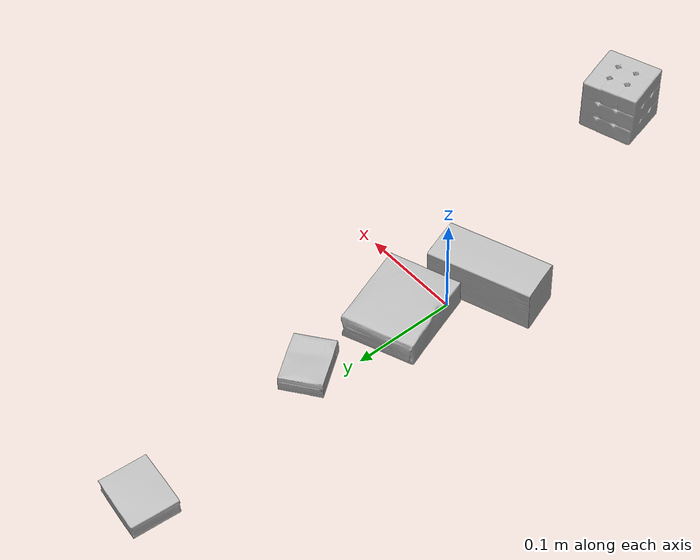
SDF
<sdf version="1.4">
  <world name="default">
    <light name="light1" type="point">
      <pose>0 0 1 0 0 0</pose>
      <diffuse>3 3 3 1</diffuse>
      <specular>3 3 3 1</specular>
    </light>
    <light name="light2" type="point">
      <pose>0 0.5 2 0 0 0</pose>
      <diffuse>1 1 1 1</diffuse>
      <specular>1 1 1 1</specular>
    </light>
    <light name="light3" type="point">
      <pose>0 0.5 2 0 0 0</pose>
      <diffuse>3 3 3 1</diffuse>
      <specular>3 3 3 1</specular>
    </light>
    <scene>
      <ambient>0.7 0.7 0.7</ambient>
    </scene>
    <model name="box1">
      <link name="link_box1">
        <collision name="default">
          <geometry>
            <mesh>
              <uri>model://rubiks_cube/collision_meshes/collision.obj</uri>
              <scale>1.0 1.0 1.0</scale>
            </mesh>
          </geometry>
          <surface>
            <friction>
              <ode>
                <mu>0.5</mu>
                <mu2>0.5</mu2>
              </ode>
            </friction>
          <contact>
        <ode>
            <max_vel>0</max_vel>
            <min_depth>0.0001</min_depth>
            <kp>1e8</kp>
        </ode>
    </contact></surface>
        </collision>
        <visual name="default">
          <geometry>
            <mesh>
              <uri>model://rubiks_cube/visual_meshes/visual.dae</uri>
              <scale>1.0 1.0 1.0</scale>
            </mesh>
          </geometry>
        </visual>
        <inertial>
          <mass>0.16542086005210876</mass>
          <pose>2.6721041649580002e-05 5.256967051536776e-05 -7.264316536748083e-06 -0.054673137900176624 -0.09813866632394339 -0.03445580911338559</pose>
          <inertia>
            <ixx>9.140613e-05</ixx>
            <iyy>9.097988e-05</iyy>
            <izz>9.216359e-05</izz>
            <ixy>0</ixy>
            <ixz>0</ixz>
            <iyz>0</iyz>
          </inertia>
        </inertial>
      </link>
      <pose>0.0733569785952568 -0.28958219289779663 0.02867896854877472 -2.7633013952836433e-06 -1.0674660809778846e-06 -2.842104124147847</pose>
    </model>
    <model name="box2">
      <link name="link_box2">
        <collision name="default">
          <geometry>
            <mesh>
              <uri>model://cracker_box/collision_meshes/collision.obj</uri>
              <scale>0.25 0.25 0.25</scale>
            </mesh>
          </geometry>
          <surface>
            <friction>
              <ode>
                <mu>0.5</mu>
                <mu2>0.5</mu2>
              </ode>
            </friction>
          <contact>
        <ode>
            <max_vel>0</max_vel>
            <min_depth>0.0001</min_depth>
            <kp>1e8</kp>
        </ode>
    </contact></surface>
        </collision>
        <visual name="default">
          <geometry>
            <mesh>
              <uri>model://cracker_box/visual_meshes/visual.dae</uri>
              <scale>0.25 0.25 0.25</scale>
            </mesh>
          </geometry>
        </visual>
        <inertial>
          <mass>0.04381135478615761</mass>
          <pose>0.00023660462466068566 6.358561222441494e-05 -0.0004257383698131889 -0.00031620747829542317 -0.011106489600678707 0.002546794302661479</pose>
          <inertia>
            <ixx>6.9647826e-06</ixx>
            <iyy>1.1500225e-05</iyy>
            <izz>1.6411877e-05</izz>
            <ixy>0</ixy>
            <ixz>0</ixz>
            <iyz>0</iyz>
          </inertia>
        </inertial>
      </link>
      <pose>0.020374547690153122 0.1402009129524231 0.009120453149080276 -0.011788347145922548 -0.007367232376140981 2.209437257996017</pose>
    </model>
    <model name="box3">
      <link name="link_box3">
        <collision name="default">
          <geometry>
            <mesh>
              <uri>model://gelatin_box/collision_meshes/collision.obj</uri>
              <scale>1.0 1.0 1.0</scale>
            </mesh>
          </geometry>
          <surface>
            <friction>
              <ode>
                <mu>0.5</mu>
                <mu2>0.5</mu2>
              </ode>
            </friction>
          <contact>
        <ode>
            <max_vel>0</max_vel>
            <min_depth>0.0001</min_depth>
            <kp>1e8</kp>
        </ode>
    </contact></surface>
        </collision>
        <visual name="default">
          <geometry>
            <mesh>
              <uri>model://gelatin_box/visual_meshes/visual.dae</uri>
              <scale>1.0 1.0 1.0</scale>
            </mesh>
          </geometry>
        </visual>
        <inertial>
          <mass>0.23367169499397278</mass>
          <pose>0.0004319618456065655 0.00011156871914863586 -0.0003640321083366871 -0.0010503719733775277 -0.004755817758083372 0.016440561333906818</pose>
          <inertia>
            <ixx>0.00016495313</ixx>
            <iyy>0.00011782518</iyy>
            <izz>0.00025109548</izz>
            <ixy>0</ixy>
            <ixz>0</ixz>
            <iyz>0</iyz>
          </inertia>
        </inertial>
      </link>
      <pose>0.013534502126276493 0.04141349345445633 0.01516831573098898 0.005597465817868154 -0.007304570889099871 -2.8096516736782045</pose>
    </model>
    <model name="box4">
      <link name="link_box4">
        <collision name="default">
          <geometry>
            <mesh>
              <uri>model://wood_block/collision_meshes/collision.obj</uri>
              <scale>0.5 0.5 0.5</scale>
            </mesh>
          </geometry>
          <surface>
            <friction>
              <ode>
                <mu>0.5</mu>
                <mu2>0.5</mu2>
              </ode>
            </friction>
          <contact>
        <ode>
            <max_vel>0</max_vel>
            <min_depth>0.0001</min_depth>
            <kp>1e8</kp>
        </ode>
    </contact></surface>
        </collision>
        <visual name="default">
          <geometry>
            <mesh>
              <uri>model://wood_block/visual_meshes/visual.dae</uri>
              <scale>0.5 0.5 0.5</scale>
            </mesh>
          </geometry>
        </visual>
        <inertial>
          <mass>0.20833587646484375</mass>
          <pose>-2.9066577553749084e-06 -0.000285404734313488 0.00013204291462898254 -0.05220975529367638 -0.0051926946165042134 -0.0068613779519224715</pose>
          <inertia>
            <ixx>6.9696216e-05</ixx>
            <iyy>0.0002201704</iyy>
            <izz>0.00021934687</izz>
            <ixy>0</ixy>
            <ixz>0</ixz>
            <iyz>0</iyz>
          </inertia>
        </inertial>
      </link>
      <pose>-0.012416170910000801 -0.03856915608048439 0.02262927033007145 -0.005208440445752276 0.005718702732539849 0.3370396581625943</pose>
    </model>
    <model name="box5">
      <link name="link_box5">
        <collision name="default">
          <geometry>
            <mesh>
              <uri>model://pudding_box/collision_meshes/collision.obj</uri>
              <scale>0.5 0.5 0.5</scale>
            </mesh>
          </geometry>
          <surface>
            <friction>
              <ode>
                <mu>0.5</mu>
                <mu2>0.5</mu2>
              </ode>
            </friction>
          <contact>
        <ode>
            <max_vel>0</max_vel>
            <min_depth>0.0001</min_depth>
            <kp>1e8</kp>
        </ode>
    </contact></surface>
        </collision>
        <visual name="default">
          <geometry>
            <mesh>
              <uri>model://pudding_box/visual_meshes/visual.dae</uri>
              <scale>0.5 0.5 0.5</scale>
            </mesh>
          </geometry>
        </visual>
        <inertial>
          <mass>0.032720133662223816</mass>
          <pose>0.00024474109522998333 0.0004033942532259971 -0.0002594413817860186 0.005213102275410761 -0.0066037963999523224 0.020079827026921356</pose>
          <inertia>
            <ixx>9.2471055e-06</ixx>
            <iyy>6.221519e-06</iyy>
            <izz>1.3655769e-05</izz>
            <ixy>0</ixy>
            <ixz>0</ixz>
            <iyz>0</iyz>
          </inertia>
        </inertial>
      </link>
      <pose>0.0006999142933636904 0.32741010189056396 0.00986290443688631 0.022348495886574043 -0.01139172340449891 -1.6647519026159656</pose>
    </model>
  <physics type="ode">
      <max_contacts>50</max_contacts>
      <ode>
        <solver>
          <type>quick</type>
          <iters>75</iters>
        </solver>
        <constraints>
          <contact_max_correcting_vel>0</contact_max_correcting_vel>
          <contact_surface_layer>0</contact_surface_layer>
        </constraints>
      </ode>
    </physics></world>
</sdf>
